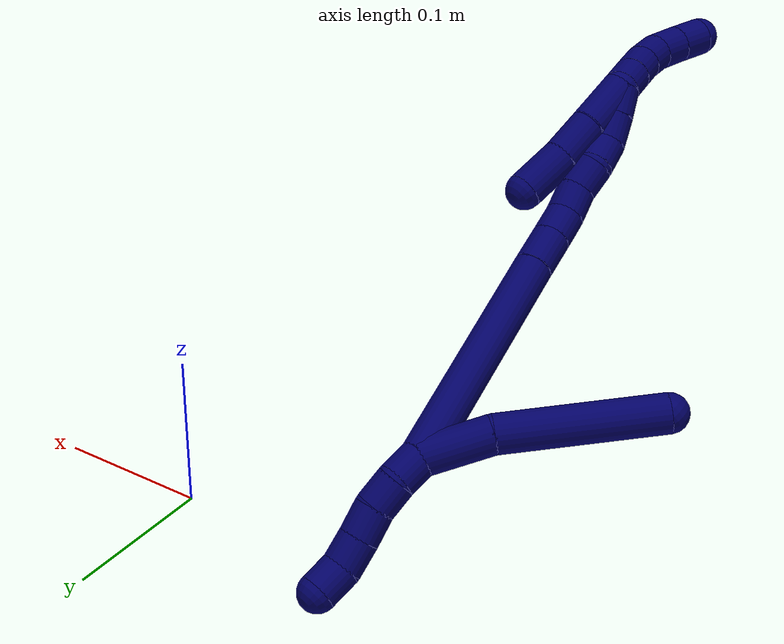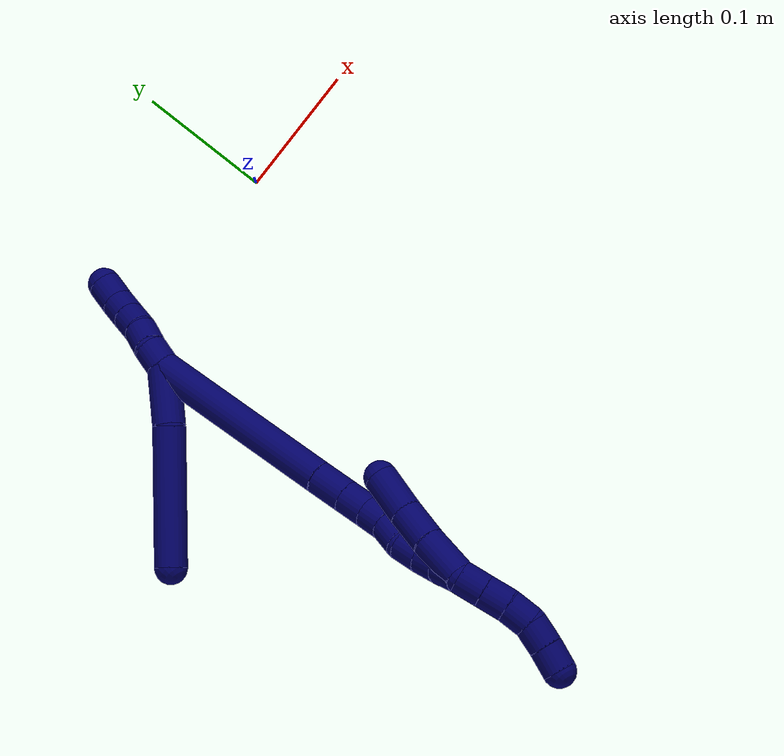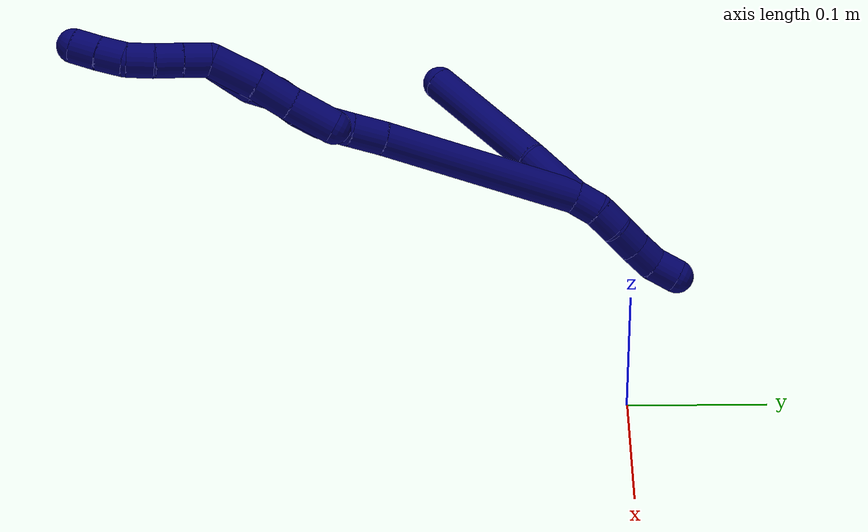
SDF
<sdf version="1.7">
 <world name="default">
  <model name="7">
   <static>0</static>
   <link name="7">
    <collision name="collision-cylinder-e_1_2_8">
     <pose>0.004188 0.011196 0.019275 -0.526243 0.1857 -0.050155</pose>
     <geometry><cylinder><radius>0.0125</radius><length>0.045361</length></cylinder></geometry>
     <surface>
      <friction><ode><mu>1.16</mu><mu2>1.16</mu2><slip1>0</slip1><slip2>0</slip2></ode></friction>
      <contact><ode><kp>1e+06</kp><kd>1</kd><max_vel>0</max_vel><min_depth>0.001</min_depth></ode></contact>
     </surface>
    </collision>
    <visual name="visual-cylinder-e_1_2_8">
     <pose>0.004188 0.011196 0.019275 -0.526243 0.1857 -0.050155</pose>
     <geometry><cylinder><radius>0.0125</radius><length>0.045361</length></cylinder></geometry>
     <material><ambient>0.003922 0 0.403922 1</ambient></material>
    </visual>
    <collision name="collision-cylinder-e_2_8_6">
     <pose>0.014875 0.055827 0.078263 -0.699764 0.124549 -0.045498</pose>
     <geometry><cylinder><radius>0.0125</radius><length>0.104639</length></cylinder></geometry>
     <surface>
      <friction><ode><mu>1.16</mu><mu2>1.16</mu2><slip1>0</slip1><slip2>0</slip2></ode></friction>
      <contact><ode><kp>1e+06</kp><kd>1</kd><max_vel>0</max_vel><min_depth>0.001</min_depth></ode></contact>
     </surface>
    </collision>
    <visual name="visual-cylinder-e_2_8_6">
     <pose>0.014875 0.055827 0.078263 -0.699764 0.124549 -0.045498</pose>
     <geometry><cylinder><radius>0.0125</radius><length>0.104639</length></cylinder></geometry>
     <material><ambient>0.003922 0 0.403922 1</ambient></material>
    </visual>
    <collision name="collision-cylinder-e_1_2_9">
     <pose>-0.000269 -0.000175 -0.009995 3.12407 -0.026889 -1.98654</pose>
     <geometry><cylinder><radius>0.0125</radius><length>0.02</length></cylinder></geometry>
     <surface>
      <friction><ode><mu>1.16</mu><mu2>1.16</mu2><slip1>0</slip1><slip2>0</slip2></ode></friction>
      <contact><ode><kp>1e+06</kp><kd>1</kd><max_vel>0</max_vel><min_depth>0.001</min_depth></ode></contact>
     </surface>
    </collision>
    <visual name="visual-cylinder-e_1_2_9">
     <pose>-0.000269 -0.000175 -0.009995 3.12407 -0.026889 -1.98654</pose>
     <geometry><cylinder><radius>0.0125</radius><length>0.02</length></cylinder></geometry>
     <material><ambient>0.003922 0 0.403922 1</ambient></material>
    </visual>
    <collision name="collision-cylinder-e_2_9_10">
     <pose>-0.00322 0.000347 -0.029598 -3.06919 -0.2716 2.62338</pose>
     <geometry><cylinder><radius>0.0125</radius><length>0.02</length></cylinder></geometry>
     <surface>
      <friction><ode><mu>1.16</mu><mu2>1.16</mu2><slip1>0</slip1><slip2>0</slip2></ode></friction>
      <contact><ode><kp>1e+06</kp><kd>1</kd><max_vel>0</max_vel><min_depth>0.001</min_depth></ode></contact>
     </surface>
    </collision>
    <visual name="visual-cylinder-e_2_9_10">
     <pose>-0.00322 0.000347 -0.029598 -3.06919 -0.2716 2.62338</pose>
     <geometry><cylinder><radius>0.0125</radius><length>0.02</length></cylinder></geometry>
     <material><ambient>0.003922 0 0.403922 1</ambient></material>
    </visual>
    <collision name="collision-cylinder-e_3_10_11">
     <pose>-0.008785 0.003676 -0.048413 -2.86306 -0.292328 1.61978</pose>
     <geometry><cylinder><radius>0.0125</radius><length>0.02</length></cylinder></geometry>
     <surface>
      <friction><ode><mu>1.16</mu><mu2>1.16</mu2><slip1>0</slip1><slip2>0</slip2></ode></friction>
      <contact><ode><kp>1e+06</kp><kd>1</kd><max_vel>0</max_vel><min_depth>0.001</min_depth></ode></contact>
     </surface>
    </collision>
    <visual name="visual-cylinder-e_3_10_11">
     <pose>-0.008785 0.003676 -0.048413 -2.86306 -0.292328 1.61978</pose>
     <geometry><cylinder><radius>0.0125</radius><length>0.02</length></cylinder></geometry>
     <material><ambient>0.003922 0 0.403922 1</ambient></material>
    </visual>
    <collision name="collision-cylinder-e_4_11_12">
     <pose>-0.014111 0.008517 -0.067062 -2.91189 -0.246905 1.64362</pose>
     <geometry><cylinder><radius>0.0125</radius><length>0.02</length></cylinder></geometry>
     <surface>
      <friction><ode><mu>1.16</mu><mu2>1.16</mu2><slip1>0</slip1><slip2>0</slip2></ode></friction>
      <contact><ode><kp>1e+06</kp><kd>1</kd><max_vel>0</max_vel><min_depth>0.001</min_depth></ode></contact>
     </surface>
    </collision>
    <visual name="visual-cylinder-e_4_11_12">
     <pose>-0.014111 0.008517 -0.067062 -2.91189 -0.246905 1.64362</pose>
     <geometry><cylinder><radius>0.0125</radius><length>0.02</length></cylinder></geometry>
     <material><ambient>0.003922 0 0.403922 1</ambient></material>
    </visual>
    <collision name="collision-cylinder-e_5_12_5">
     <pose>-0.016533 0.010632 -0.086503 3.13227 0.002195 0.46246</pose>
     <geometry><cylinder><radius>0.0125</radius><length>0.02</length></cylinder></geometry>
     <surface>
      <friction><ode><mu>1.16</mu><mu2>1.16</mu2><slip1>0</slip1><slip2>0</slip2></ode></friction>
      <contact><ode><kp>1e+06</kp><kd>1</kd><max_vel>0</max_vel><min_depth>0.001</min_depth></ode></contact>
     </surface>
    </collision>
    <visual name="visual-cylinder-e_5_12_5">
     <pose>-0.016533 0.010632 -0.086503 3.13227 0.002195 0.46246</pose>
     <geometry><cylinder><radius>0.0125</radius><length>0.02</length></cylinder></geometry>
     <material><ambient>0.003922 0 0.403922 1</ambient></material>
    </visual>
    <collision name="collision-cylinder-e_1_2_13">
     <pose>-0.013305 -0.016648 0.0734 0.223041 -0.174973 -0.019644</pose>
     <geometry><cylinder><radius>0.0125</radius><length>0.152863</length></cylinder></geometry>
     <surface>
      <friction><ode><mu>1.16</mu><mu2>1.16</mu2><slip1>0</slip1><slip2>0</slip2></ode></friction>
      <contact><ode><kp>1e+06</kp><kd>1</kd><max_vel>0</max_vel><min_depth>0.001</min_depth></ode></contact>
     </surface>
    </collision>
    <visual name="visual-cylinder-e_1_2_13">
     <pose>-0.013305 -0.016648 0.0734 0.223041 -0.174973 -0.019644</pose>
     <geometry><cylinder><radius>0.0125</radius><length>0.152863</length></cylinder></geometry>
     <material><ambient>0.003922 0 0.403922 1</ambient></material>
    </visual>
    <collision name="collision-cylinder-e_2_13_14">
     <pose>-0.029365 -0.035948 0.159202 0.210655 -0.213843 -0.022693</pose>
     <geometry><cylinder><radius>0.0125</radius><length>0.025954</length></cylinder></geometry>
     <surface>
      <friction><ode><mu>1.16</mu><mu2>1.16</mu2><slip1>0</slip1><slip2>0</slip2></ode></friction>
      <contact><ode><kp>1e+06</kp><kd>1</kd><max_vel>0</max_vel><min_depth>0.001</min_depth></ode></contact>
     </surface>
    </collision>
    <visual name="visual-cylinder-e_2_13_14">
     <pose>-0.029365 -0.035948 0.159202 0.210655 -0.213843 -0.022693</pose>
     <geometry><cylinder><radius>0.0125</radius><length>0.025954</length></cylinder></geometry>
     <material><ambient>0.003922 0 0.403922 1</ambient></material>
    </visual>
    <collision name="collision-cylinder-e_3_14_15">
     <pose>-0.034267 -0.04083 0.181679 0.217846 -0.205232 -0.022521</pose>
     <geometry><cylinder><radius>0.0125</radius><length>0.021082</length></cylinder></geometry>
     <surface>
      <friction><ode><mu>1.16</mu><mu2>1.16</mu2><slip1>0</slip1><slip2>0</slip2></ode></friction>
      <contact><ode><kp>1e+06</kp><kd>1</kd><max_vel>0</max_vel><min_depth>0.001</min_depth></ode></contact>
     </surface>
    </collision>
    <visual name="visual-cylinder-e_3_14_15">
     <pose>-0.034267 -0.04083 0.181679 0.217846 -0.205232 -0.022521</pose>
     <geometry><cylinder><radius>0.0125</radius><length>0.021082</length></cylinder></geometry>
     <material><ambient>0.003922 0 0.403922 1</ambient></material>
    </visual>
    <collision name="collision-cylinder-e_4_15_16">
     <pose>-0.036321 -0.046232 0.201259 0.322093 0.009406 0.001528</pose>
     <geometry><cylinder><radius>0.0125</radius><length>0.020039</length></cylinder></geometry>
     <surface>
      <friction><ode><mu>1.16</mu><mu2>1.16</mu2><slip1>0</slip1><slip2>0</slip2></ode></friction>
      <contact><ode><kp>1e+06</kp><kd>1</kd><max_vel>0</max_vel><min_depth>0.001</min_depth></ode></contact>
     </surface>
    </collision>
    <visual name="visual-cylinder-e_4_15_16">
     <pose>-0.036321 -0.046232 0.201259 0.322093 0.009406 0.001528</pose>
     <geometry><cylinder><radius>0.0125</radius><length>0.020039</length></cylinder></geometry>
     <material><ambient>0.003922 0 0.403922 1</ambient></material>
    </visual>
    <collision name="collision-cylinder-e_5_16_17">
     <pose>-0.034794 -0.050736 0.220593 0.134734 0.143406 0.009692</pose>
     <geometry><cylinder><radius>0.0125</radius><length>0.020046</length></cylinder></geometry>
     <surface>
      <friction><ode><mu>1.16</mu><mu2>1.16</mu2><slip1>0</slip1><slip2>0</slip2></ode></friction>
      <contact><ode><kp>1e+06</kp><kd>1</kd><max_vel>0</max_vel><min_depth>0.001</min_depth></ode></contact>
     </surface>
    </collision>
    <visual name="visual-cylinder-e_5_16_17">
     <pose>-0.034794 -0.050736 0.220593 0.134734 0.143406 0.009692</pose>
     <geometry><cylinder><radius>0.0125</radius><length>0.020046</length></cylinder></geometry>
     <material><ambient>0.003922 0 0.403922 1</ambient></material>
    </visual>
    <collision name="collision-cylinder-e_6_17_18">
     <pose>-0.035139 -0.054501 0.239962 0.249628 -0.1786 -0.022467</pose>
     <geometry><cylinder><radius>0.0125</radius><length>0.020006</length></cylinder></geometry>
     <surface>
      <friction><ode><mu>1.16</mu><mu2>1.16</mu2><slip1>0</slip1><slip2>0</slip2></ode></friction>
      <contact><ode><kp>1e+06</kp><kd>1</kd><max_vel>0</max_vel><min_depth>0.001</min_depth></ode></contact>
     </surface>
    </collision>
    <visual name="visual-cylinder-e_6_17_18">
     <pose>-0.035139 -0.054501 0.239962 0.249628 -0.1786 -0.022467</pose>
     <geometry><cylinder><radius>0.0125</radius><length>0.020006</length></cylinder></geometry>
     <material><ambient>0.003922 0 0.403922 1</ambient></material>
    </visual>
    <collision name="collision-cylinder-e_7_18_19">
     <pose>-0.035961 -0.061346 0.258424 0.459329 0.095623 0.022372</pose>
     <geometry><cylinder><radius>0.0125</radius><length>0.020001</length></cylinder></geometry>
     <surface>
      <friction><ode><mu>1.16</mu><mu2>1.16</mu2><slip1>0</slip1><slip2>0</slip2></ode></friction>
      <contact><ode><kp>1e+06</kp><kd>1</kd><max_vel>0</max_vel><min_depth>0.001</min_depth></ode></contact>
     </surface>
    </collision>
    <visual name="visual-cylinder-e_7_18_19">
     <pose>-0.035961 -0.061346 0.258424 0.459329 0.095623 0.022372</pose>
     <geometry><cylinder><radius>0.0125</radius><length>0.020001</length></cylinder></geometry>
     <material><ambient>0.003922 0 0.403922 1</ambient></material>
    </visual>
    <collision name="collision-cylinder-e_8_19_1">
     <pose>-0.03388 -0.070645 0.276004 0.513769 0.112851 0.029674</pose>
     <geometry><cylinder><radius>0.0125</radius><length>0.020008</length></cylinder></geometry>
     <surface>
      <friction><ode><mu>1.16</mu><mu2>1.16</mu2><slip1>0</slip1><slip2>0</slip2></ode></friction>
      <contact><ode><kp>1e+06</kp><kd>1</kd><max_vel>0</max_vel><min_depth>0.001</min_depth></ode></contact>
     </surface>
    </collision>
    <visual name="visual-cylinder-e_8_19_1">
     <pose>-0.03388 -0.070645 0.276004 0.513769 0.112851 0.029674</pose>
     <geometry><cylinder><radius>0.0125</radius><length>0.020008</length></cylinder></geometry>
     <material><ambient>0.003922 0 0.403922 1</ambient></material>
    </visual>
    <collision name="collision-cylinder-e_1_1_20">
     <pose>-0.032261 -0.074238 0.266588 -3.07022 0.027179 -0.727447</pose>
     <geometry><cylinder><radius>0.0125</radius><length>0.036251</length></cylinder></geometry>
     <surface>
      <friction><ode><mu>1.16</mu><mu2>1.16</mu2><slip1>0</slip1><slip2>0</slip2></ode></friction>
      <contact><ode><kp>1e+06</kp><kd>1</kd><max_vel>0</max_vel><min_depth>0.001</min_depth></ode></contact>
     </surface>
    </collision>
    <visual name="visual-cylinder-e_1_1_20">
     <pose>-0.032261 -0.074238 0.266588 -3.07022 0.027179 -0.727447</pose>
     <geometry><cylinder><radius>0.0125</radius><length>0.036251</length></cylinder></geometry>
     <material><ambient>0.003922 0 0.403922 1</ambient></material>
    </visual>
    <collision name="collision-cylinder-e_2_20_21">
     <pose>-0.032556 -0.072158 0.233881 -3.08781 -0.053743 1.57012</pose>
     <geometry><cylinder><radius>0.0125</radius><length>0.029354</length></cylinder></geometry>
     <surface>
      <friction><ode><mu>1.16</mu><mu2>1.16</mu2><slip1>0</slip1><slip2>0</slip2></ode></friction>
      <contact><ode><kp>1e+06</kp><kd>1</kd><max_vel>0</max_vel><min_depth>0.001</min_depth></ode></contact>
     </surface>
    </collision>
    <visual name="visual-cylinder-e_2_20_21">
     <pose>-0.032556 -0.072158 0.233881 -3.08781 -0.053743 1.57012</pose>
     <geometry><cylinder><radius>0.0125</radius><length>0.029354</length></cylinder></geometry>
     <material><ambient>0.003922 0 0.403922 1</ambient></material>
    </visual>
    <collision name="collision-cylinder-e_3_21_4">
     <pose>-0.033403 -0.071944 0.202059 3.10824 -0.003397 -0.202935</pose>
     <geometry><cylinder><radius>0.0125</radius><length>0.034395</length></cylinder></geometry>
     <surface>
      <friction><ode><mu>1.16</mu><mu2>1.16</mu2><slip1>0</slip1><slip2>0</slip2></ode></friction>
      <contact><ode><kp>1e+06</kp><kd>1</kd><max_vel>0</max_vel><min_depth>0.001</min_depth></ode></contact>
     </surface>
    </collision>
    <visual name="visual-cylinder-e_3_21_4">
     <pose>-0.033403 -0.071944 0.202059 3.10824 -0.003397 -0.202935</pose>
     <geometry><cylinder><radius>0.0125</radius><length>0.034395</length></cylinder></geometry>
     <material><ambient>0.003922 0 0.403922 1</ambient></material>
    </visual>
    <collision name="collision-cylinder-e_1_1_22">
     <pose>-0.037429 -0.076688 0.293424 0.131308 -0.486511 -0.032631</pose>
     <geometry><cylinder><radius>0.0125</radius><length>0.02</length></cylinder></geometry>
     <surface>
      <friction><ode><mu>1.16</mu><mu2>1.16</mu2><slip1>0</slip1><slip2>0</slip2></ode></friction>
      <contact><ode><kp>1e+06</kp><kd>1</kd><max_vel>0</max_vel><min_depth>0.001</min_depth></ode></contact>
     </surface>
    </collision>
    <visual name="visual-cylinder-e_1_1_22">
     <pose>-0.037429 -0.076688 0.293424 0.131308 -0.486511 -0.032631</pose>
     <geometry><cylinder><radius>0.0125</radius><length>0.02</length></cylinder></geometry>
     <material><ambient>0.003922 0 0.403922 1</ambient></material>
    </visual>
    <collision name="collision-cylinder-e_2_22_23">
     <pose>-0.046982 -0.078919 0.310851 0.123316 -0.509619 -0.032158</pose>
     <geometry><cylinder><radius>0.0125</radius><length>0.02</length></cylinder></geometry>
     <surface>
      <friction><ode><mu>1.16</mu><mu2>1.16</mu2><slip1>0</slip1><slip2>0</slip2></ode></friction>
      <contact><ode><kp>1e+06</kp><kd>1</kd><max_vel>0</max_vel><min_depth>0.001</min_depth></ode></contact>
     </surface>
    </collision>
    <visual name="visual-cylinder-e_2_22_23">
     <pose>-0.046982 -0.078919 0.310851 0.123316 -0.509619 -0.032158</pose>
     <geometry><cylinder><radius>0.0125</radius><length>0.02</length></cylinder></geometry>
     <material><ambient>0.003922 0 0.403922 1</ambient></material>
    </visual>
    <collision name="collision-cylinder-e_3_23_24">
     <pose>-0.056307 -0.079905 0.328471 -0.009799 -0.460736 0.002298</pose>
     <geometry><cylinder><radius>0.0125</radius><length>0.02</length></cylinder></geometry>
     <surface>
      <friction><ode><mu>1.16</mu><mu2>1.16</mu2><slip1>0</slip1><slip2>0</slip2></ode></friction>
      <contact><ode><kp>1e+06</kp><kd>1</kd><max_vel>0</max_vel><min_depth>0.001</min_depth></ode></contact>
     </surface>
    </collision>
    <visual name="visual-cylinder-e_3_23_24">
     <pose>-0.056307 -0.079905 0.328471 -0.009799 -0.460736 0.002298</pose>
     <geometry><cylinder><radius>0.0125</radius><length>0.02</length></cylinder></geometry>
     <material><ambient>0.003922 0 0.403922 1</ambient></material>
    </visual>
    <collision name="collision-cylinder-e_4_24_25">
     <pose>-0.063407 -0.077026 0.346656 -0.293697 -0.268624 0.039968</pose>
     <geometry><cylinder><radius>0.0125</radius><length>0.02</length></cylinder></geometry>
     <surface>
      <friction><ode><mu>1.16</mu><mu2>1.16</mu2><slip1>0</slip1><slip2>0</slip2></ode></friction>
      <contact><ode><kp>1e+06</kp><kd>1</kd><max_vel>0</max_vel><min_depth>0.001</min_depth></ode></contact>
     </surface>
    </collision>
    <visual name="visual-cylinder-e_4_24_25">
     <pose>-0.063407 -0.077026 0.346656 -0.293697 -0.268624 0.039968</pose>
     <geometry><cylinder><radius>0.0125</radius><length>0.02</length></cylinder></geometry>
     <material><ambient>0.003922 0 0.403922 1</ambient></material>
    </visual>
    <collision name="collision-cylinder-e_5_25_3">
     <pose>-0.068255 -0.071008 0.365092 -0.337073 -0.221188 0.037785</pose>
     <geometry><cylinder><radius>0.0125</radius><length>0.02</length></cylinder></geometry>
     <surface>
      <friction><ode><mu>1.16</mu><mu2>1.16</mu2><slip1>0</slip1><slip2>0</slip2></ode></friction>
      <contact><ode><kp>1e+06</kp><kd>1</kd><max_vel>0</max_vel><min_depth>0.001</min_depth></ode></contact>
     </surface>
    </collision>
    <visual name="visual-cylinder-e_5_25_3">
     <pose>-0.068255 -0.071008 0.365092 -0.337073 -0.221188 0.037785</pose>
     <geometry><cylinder><radius>0.0125</radius><length>0.02</length></cylinder></geometry>
     <material><ambient>0.003922 0 0.403922 1</ambient></material>
    </visual>
    <collision name="collision-sphere-3">
     <pose>-0.070449 -0.067781 0.374299 0 -0 0</pose>
     <geometry><sphere><radius>0.0125</radius></sphere></geometry>
     <surface>
      <friction><ode><mu>1.16</mu><mu2>1.16</mu2><slip1>0</slip1><slip2>0</slip2></ode></friction>
      <contact><ode><kp>1e+06</kp><kd>1</kd><max_vel>0</max_vel><min_depth>0.001</min_depth></ode></contact>
     </surface>
    </collision>
    <visual name="visual-sphere-3">
     <pose>-0.070449 -0.067781 0.374299 0 -0 0</pose>
     <geometry><sphere><radius>0.0125</radius></sphere></geometry>
     <material><ambient>0.003922 0 0.403922 1</ambient></material>
    </visual>
    <collision name="collision-sphere-25">
     <pose>-0.066061 -0.074235 0.355885 0 -0 0</pose>
     <geometry><sphere><radius>0.0125</radius></sphere></geometry>
     <surface>
      <friction><ode><mu>1.16</mu><mu2>1.16</mu2><slip1>0</slip1><slip2>0</slip2></ode></friction>
      <contact><ode><kp>1e+06</kp><kd>1</kd><max_vel>0</max_vel><min_depth>0.001</min_depth></ode></contact>
     </surface>
    </collision>
    <visual name="visual-sphere-25">
     <pose>-0.066061 -0.074235 0.355885 0 -0 0</pose>
     <geometry><sphere><radius>0.0125</radius></sphere></geometry>
     <material><ambient>0.003922 0 0.403922 1</ambient></material>
    </visual>
    <collision name="collision-sphere-24">
     <pose>-0.060753 -0.079817 0.337428 0 -0 0</pose>
     <geometry><sphere><radius>0.0125</radius></sphere></geometry>
     <surface>
      <friction><ode><mu>1.16</mu><mu2>1.16</mu2><slip1>0</slip1><slip2>0</slip2></ode></friction>
      <contact><ode><kp>1e+06</kp><kd>1</kd><max_vel>0</max_vel><min_depth>0.001</min_depth></ode></contact>
     </surface>
    </collision>
    <visual name="visual-sphere-24">
     <pose>-0.060753 -0.079817 0.337428 0 -0 0</pose>
     <geometry><sphere><radius>0.0125</radius></sphere></geometry>
     <material><ambient>0.003922 0 0.403922 1</ambient></material>
    </visual>
    <collision name="collision-sphere-23">
     <pose>-0.051861 -0.079993 0.319514 0 -0 0</pose>
     <geometry><sphere><radius>0.0125</radius></sphere></geometry>
     <surface>
      <friction><ode><mu>1.16</mu><mu2>1.16</mu2><slip1>0</slip1><slip2>0</slip2></ode></friction>
      <contact><ode><kp>1e+06</kp><kd>1</kd><max_vel>0</max_vel><min_depth>0.001</min_depth></ode></contact>
     </surface>
    </collision>
    <visual name="visual-sphere-23">
     <pose>-0.051861 -0.079993 0.319514 0 -0 0</pose>
     <geometry><sphere><radius>0.0125</radius></sphere></geometry>
     <material><ambient>0.003922 0 0.403922 1</ambient></material>
    </visual>
    <collision name="collision-sphere-22">
     <pose>-0.042104 -0.077845 0.302188 0 -0 0</pose>
     <geometry><sphere><radius>0.0125</radius></sphere></geometry>
     <surface>
      <friction><ode><mu>1.16</mu><mu2>1.16</mu2><slip1>0</slip1><slip2>0</slip2></ode></friction>
      <contact><ode><kp>1e+06</kp><kd>1</kd><max_vel>0</max_vel><min_depth>0.001</min_depth></ode></contact>
     </surface>
    </collision>
    <visual name="visual-sphere-22">
     <pose>-0.042104 -0.077845 0.302188 0 -0 0</pose>
     <geometry><sphere><radius>0.0125</radius></sphere></geometry>
     <material><ambient>0.003922 0 0.403922 1</ambient></material>
    </visual>
    <collision name="collision-sphere-4">
     <pose>-0.033462 -0.072518 0.184871 0 -0 0</pose>
     <geometry><sphere><radius>0.0125</radius></sphere></geometry>
     <surface>
      <friction><ode><mu>1.16</mu><mu2>1.16</mu2><slip1>0</slip1><slip2>0</slip2></ode></friction>
      <contact><ode><kp>1e+06</kp><kd>1</kd><max_vel>0</max_vel><min_depth>0.001</min_depth></ode></contact>
     </surface>
    </collision>
    <visual name="visual-sphere-4">
     <pose>-0.033462 -0.072518 0.184871 0 -0 0</pose>
     <geometry><sphere><radius>0.0125</radius></sphere></geometry>
     <material><ambient>0.003922 0 0.403922 1</ambient></material>
    </visual>
    <collision name="collision-sphere-21">
     <pose>-0.033345 -0.07137 0.219247 0 -0 0</pose>
     <geometry><sphere><radius>0.0125</radius></sphere></geometry>
     <surface>
      <friction><ode><mu>1.16</mu><mu2>1.16</mu2><slip1>0</slip1><slip2>0</slip2></ode></friction>
      <contact><ode><kp>1e+06</kp><kd>1</kd><max_vel>0</max_vel><min_depth>0.001</min_depth></ode></contact>
     </surface>
    </collision>
    <visual name="visual-sphere-21">
     <pose>-0.033345 -0.07137 0.219247 0 -0 0</pose>
     <geometry><sphere><radius>0.0125</radius></sphere></geometry>
     <material><ambient>0.003922 0 0.403922 1</ambient></material>
    </visual>
    <collision name="collision-sphere-20">
     <pose>-0.031768 -0.072946 0.248516 0 -0 0</pose>
     <geometry><sphere><radius>0.0125</radius></sphere></geometry>
     <surface>
      <friction><ode><mu>1.16</mu><mu2>1.16</mu2><slip1>0</slip1><slip2>0</slip2></ode></friction>
      <contact><ode><kp>1e+06</kp><kd>1</kd><max_vel>0</max_vel><min_depth>0.001</min_depth></ode></contact>
     </surface>
    </collision>
    <visual name="visual-sphere-20">
     <pose>-0.031768 -0.072946 0.248516 0 -0 0</pose>
     <geometry><sphere><radius>0.0125</radius></sphere></geometry>
     <material><ambient>0.003922 0 0.403922 1</ambient></material>
    </visual>
    <collision name="collision-sphere-11">
     <pose>-0.011667 0.006309 -0.057619 0 -0 0</pose>
     <geometry><sphere><radius>0.0125</radius></sphere></geometry>
     <surface>
      <friction><ode><mu>1.16</mu><mu2>1.16</mu2><slip1>0</slip1><slip2>0</slip2></ode></friction>
      <contact><ode><kp>1e+06</kp><kd>1</kd><max_vel>0</max_vel><min_depth>0.001</min_depth></ode></contact>
     </surface>
    </collision>
    <visual name="visual-sphere-11">
     <pose>-0.011667 0.006309 -0.057619 0 -0 0</pose>
     <geometry><sphere><radius>0.0125</radius></sphere></geometry>
     <material><ambient>0.003922 0 0.403922 1</ambient></material>
    </visual>
    <collision name="collision-sphere-10">
     <pose>-0.005903 0.001044 -0.039206 0 -0 0</pose>
     <geometry><sphere><radius>0.0125</radius></sphere></geometry>
     <surface>
      <friction><ode><mu>1.16</mu><mu2>1.16</mu2><slip1>0</slip1><slip2>0</slip2></ode></friction>
      <contact><ode><kp>1e+06</kp><kd>1</kd><max_vel>0</max_vel><min_depth>0.001</min_depth></ode></contact>
     </surface>
    </collision>
    <visual name="visual-sphere-10">
     <pose>-0.005903 0.001044 -0.039206 0 -0 0</pose>
     <geometry><sphere><radius>0.0125</radius></sphere></geometry>
     <material><ambient>0.003922 0 0.403922 1</ambient></material>
    </visual>
    <collision name="collision-sphere-6">
     <pose>0.021374 0.089262 0.117977 0 -0 0</pose>
     <geometry><sphere><radius>0.0125</radius></sphere></geometry>
     <surface>
      <friction><ode><mu>1.16</mu><mu2>1.16</mu2><slip1>0</slip1><slip2>0</slip2></ode></friction>
      <contact><ode><kp>1e+06</kp><kd>1</kd><max_vel>0</max_vel><min_depth>0.001</min_depth></ode></contact>
     </surface>
    </collision>
    <visual name="visual-sphere-6">
     <pose>0.021374 0.089262 0.117977 0 -0 0</pose>
     <geometry><sphere><radius>0.0125</radius></sphere></geometry>
     <material><ambient>0.003922 0 0.403922 1</ambient></material>
    </visual>
    <collision name="collision-sphere-9">
     <pose>-0.000538 -0.00035 -0.01999 0 -0 0</pose>
     <geometry><sphere><radius>0.0125</radius></sphere></geometry>
     <surface>
      <friction><ode><mu>1.16</mu><mu2>1.16</mu2><slip1>0</slip1><slip2>0</slip2></ode></friction>
      <contact><ode><kp>1e+06</kp><kd>1</kd><max_vel>0</max_vel><min_depth>0.001</min_depth></ode></contact>
     </surface>
    </collision>
    <visual name="visual-sphere-9">
     <pose>-0.000538 -0.00035 -0.01999 0 -0 0</pose>
     <geometry><sphere><radius>0.0125</radius></sphere></geometry>
     <material><ambient>0.003922 0 0.403922 1</ambient></material>
    </visual>
    <collision name="collision-sphere-2">
     <geometry><sphere><radius>0.0125</radius></sphere></geometry>
     <surface>
      <friction><ode><mu>1.16</mu><mu2>1.16</mu2><slip1>0</slip1><slip2>0</slip2></ode></friction>
      <contact><ode><kp>1e+06</kp><kd>1</kd><max_vel>0</max_vel><min_depth>0.001</min_depth></ode></contact>
     </surface>
    </collision>
    <visual name="visual-sphere-2">
     <geometry><sphere><radius>0.0125</radius></sphere></geometry>
     <material><ambient>0.003922 0 0.403922 1</ambient></material>
    </visual>
    <collision name="collision-sphere-19">
     <pose>-0.035006 -0.06576 0.267347 0 -0 0</pose>
     <geometry><sphere><radius>0.0125</radius></sphere></geometry>
     <surface>
      <friction><ode><mu>1.16</mu><mu2>1.16</mu2><slip1>0</slip1><slip2>0</slip2></ode></friction>
      <contact><ode><kp>1e+06</kp><kd>1</kd><max_vel>0</max_vel><min_depth>0.001</min_depth></ode></contact>
     </surface>
    </collision>
    <visual name="visual-sphere-19">
     <pose>-0.035006 -0.06576 0.267347 0 -0 0</pose>
     <geometry><sphere><radius>0.0125</radius></sphere></geometry>
     <material><ambient>0.003922 0 0.403922 1</ambient></material>
    </visual>
    <collision name="collision-sphere-8">
     <pose>0.008375 0.022393 0.038549 0 -0 0</pose>
     <geometry><sphere><radius>0.0125</radius></sphere></geometry>
     <surface>
      <friction><ode><mu>1.16</mu><mu2>1.16</mu2><slip1>0</slip1><slip2>0</slip2></ode></friction>
      <contact><ode><kp>1e+06</kp><kd>1</kd><max_vel>0</max_vel><min_depth>0.001</min_depth></ode></contact>
     </surface>
    </collision>
    <visual name="visual-sphere-8">
     <pose>0.008375 0.022393 0.038549 0 -0 0</pose>
     <geometry><sphere><radius>0.0125</radius></sphere></geometry>
     <material><ambient>0.003922 0 0.403922 1</ambient></material>
    </visual>
    <collision name="collision-sphere-12">
     <pose>-0.016555 0.010725 -0.076504 0 -0 0</pose>
     <geometry><sphere><radius>0.0125</radius></sphere></geometry>
     <surface>
      <friction><ode><mu>1.16</mu><mu2>1.16</mu2><slip1>0</slip1><slip2>0</slip2></ode></friction>
      <contact><ode><kp>1e+06</kp><kd>1</kd><max_vel>0</max_vel><min_depth>0.001</min_depth></ode></contact>
     </surface>
    </collision>
    <visual name="visual-sphere-12">
     <pose>-0.016555 0.010725 -0.076504 0 -0 0</pose>
     <geometry><sphere><radius>0.0125</radius></sphere></geometry>
     <material><ambient>0.003922 0 0.403922 1</ambient></material>
    </visual>
    <collision name="collision-sphere-5">
     <pose>-0.016511 0.010538 -0.096503 0 -0 0</pose>
     <geometry><sphere><radius>0.0125</radius></sphere></geometry>
     <surface>
      <friction><ode><mu>1.16</mu><mu2>1.16</mu2><slip1>0</slip1><slip2>0</slip2></ode></friction>
      <contact><ode><kp>1e+06</kp><kd>1</kd><max_vel>0</max_vel><min_depth>0.001</min_depth></ode></contact>
     </surface>
    </collision>
    <visual name="visual-sphere-5">
     <pose>-0.016511 0.010538 -0.096503 0 -0 0</pose>
     <geometry><sphere><radius>0.0125</radius></sphere></geometry>
     <material><ambient>0.003922 0 0.403922 1</ambient></material>
    </visual>
    <collision name="collision-sphere-13">
     <pose>-0.026611 -0.033296 0.146801 0 -0 0</pose>
     <geometry><sphere><radius>0.0125</radius></sphere></geometry>
     <surface>
      <friction><ode><mu>1.16</mu><mu2>1.16</mu2><slip1>0</slip1><slip2>0</slip2></ode></friction>
      <contact><ode><kp>1e+06</kp><kd>1</kd><max_vel>0</max_vel><min_depth>0.001</min_depth></ode></contact>
     </surface>
    </collision>
    <visual name="visual-sphere-13">
     <pose>-0.026611 -0.033296 0.146801 0 -0 0</pose>
     <geometry><sphere><radius>0.0125</radius></sphere></geometry>
     <material><ambient>0.003922 0 0.403922 1</ambient></material>
    </visual>
    <collision name="collision-sphere-14">
     <pose>-0.032119 -0.0386 0.171603 0 -0 0</pose>
     <geometry><sphere><radius>0.0125</radius></sphere></geometry>
     <surface>
      <friction><ode><mu>1.16</mu><mu2>1.16</mu2><slip1>0</slip1><slip2>0</slip2></ode></friction>
      <contact><ode><kp>1e+06</kp><kd>1</kd><max_vel>0</max_vel><min_depth>0.001</min_depth></ode></contact>
     </surface>
    </collision>
    <visual name="visual-sphere-14">
     <pose>-0.032119 -0.0386 0.171603 0 -0 0</pose>
     <geometry><sphere><radius>0.0125</radius></sphere></geometry>
     <material><ambient>0.003922 0 0.403922 1</ambient></material>
    </visual>
    <collision name="collision-sphere-15">
     <pose>-0.036415 -0.043061 0.191755 0 -0 0</pose>
     <geometry><sphere><radius>0.0125</radius></sphere></geometry>
     <surface>
      <friction><ode><mu>1.16</mu><mu2>1.16</mu2><slip1>0</slip1><slip2>0</slip2></ode></friction>
      <contact><ode><kp>1e+06</kp><kd>1</kd><max_vel>0</max_vel><min_depth>0.001</min_depth></ode></contact>
     </surface>
    </collision>
    <visual name="visual-sphere-15">
     <pose>-0.036415 -0.043061 0.191755 0 -0 0</pose>
     <geometry><sphere><radius>0.0125</radius></sphere></geometry>
     <material><ambient>0.003922 0 0.403922 1</ambient></material>
    </visual>
    <collision name="collision-sphere-16">
     <pose>-0.036227 -0.049404 0.210763 0 -0 0</pose>
     <geometry><sphere><radius>0.0125</radius></sphere></geometry>
     <surface>
      <friction><ode><mu>1.16</mu><mu2>1.16</mu2><slip1>0</slip1><slip2>0</slip2></ode></friction>
      <contact><ode><kp>1e+06</kp><kd>1</kd><max_vel>0</max_vel><min_depth>0.001</min_depth></ode></contact>
     </surface>
    </collision>
    <visual name="visual-sphere-16">
     <pose>-0.036227 -0.049404 0.210763 0 -0 0</pose>
     <geometry><sphere><radius>0.0125</radius></sphere></geometry>
     <material><ambient>0.003922 0 0.403922 1</ambient></material>
    </visual>
    <collision name="collision-sphere-17">
     <pose>-0.033362 -0.052069 0.230423 0 -0 0</pose>
     <geometry><sphere><radius>0.0125</radius></sphere></geometry>
     <surface>
      <friction><ode><mu>1.16</mu><mu2>1.16</mu2><slip1>0</slip1><slip2>0</slip2></ode></friction>
      <contact><ode><kp>1e+06</kp><kd>1</kd><max_vel>0</max_vel><min_depth>0.001</min_depth></ode></contact>
     </surface>
    </collision>
    <visual name="visual-sphere-17">
     <pose>-0.033362 -0.052069 0.230423 0 -0 0</pose>
     <geometry><sphere><radius>0.0125</radius></sphere></geometry>
     <material><ambient>0.003922 0 0.403922 1</ambient></material>
    </visual>
    <collision name="collision-sphere-18">
     <pose>-0.036916 -0.056933 0.249501 0 -0 0</pose>
     <geometry><sphere><radius>0.0125</radius></sphere></geometry>
     <surface>
      <friction><ode><mu>1.16</mu><mu2>1.16</mu2><slip1>0</slip1><slip2>0</slip2></ode></friction>
      <contact><ode><kp>1e+06</kp><kd>1</kd><max_vel>0</max_vel><min_depth>0.001</min_depth></ode></contact>
     </surface>
    </collision>
    <visual name="visual-sphere-18">
     <pose>-0.036916 -0.056933 0.249501 0 -0 0</pose>
     <geometry><sphere><radius>0.0125</radius></sphere></geometry>
     <material><ambient>0.003922 0 0.403922 1</ambient></material>
    </visual>
    <collision name="collision-sphere-1">
     <pose>-0.032753 -0.07553 0.284661 0 -0 0</pose>
     <geometry><sphere><radius>0.0125</radius></sphere></geometry>
     <surface>
      <friction><ode><mu>1.16</mu><mu2>1.16</mu2><slip1>0</slip1><slip2>0</slip2></ode></friction>
      <contact><ode><kp>1e+06</kp><kd>1</kd><max_vel>0</max_vel><min_depth>0.001</min_depth></ode></contact>
     </surface>
    </collision>
    <visual name="visual-sphere-1">
     <pose>-0.032753 -0.07553 0.284661 0 -0 0</pose>
     <geometry><sphere><radius>0.0125</radius></sphere></geometry>
     <material><ambient>0.003922 0 0.403922 1</ambient></material>
    </visual>
    <inertial>
     <pose>-0.019837 -0.024211 0.138307 0 -0 0</pose>
     <mass>0.75</mass>
     <inertia>
      <ixx>0.000418</ixx>
      <ixy>0</ixy>
      <ixz>0</ixz>
      <iyy>0.000385</iyy>
      <iyz>0</iyz>
      <izz>6.6e-05</izz>
     </inertia>
    </inertial>
   </link>
   <pose>-0.151538 -0.033296 0.071673 -0.875439 -0.825545 2.34219</pose>
  </model>
 </world>
</sdf>
